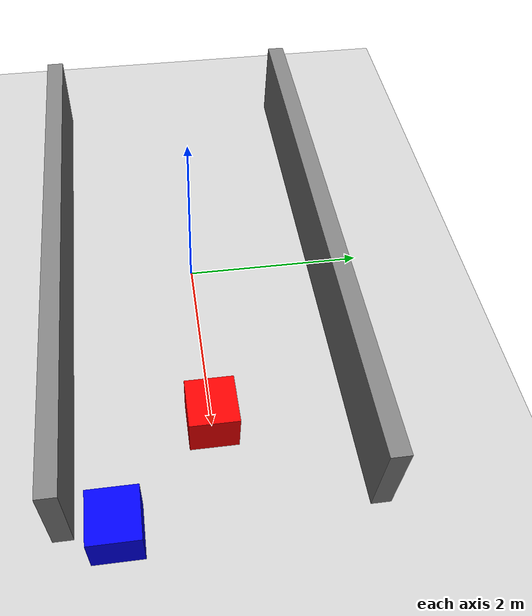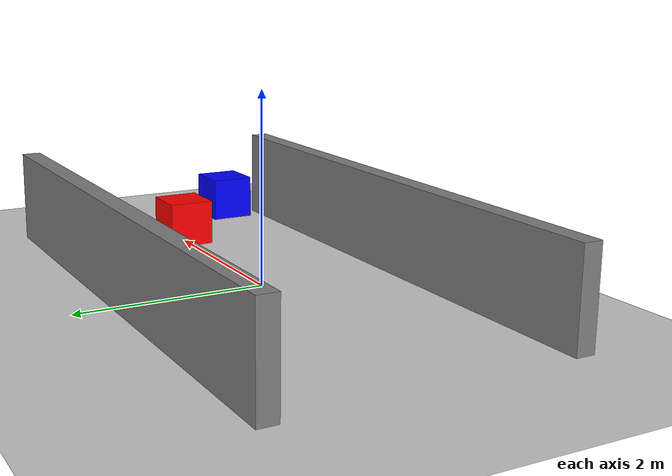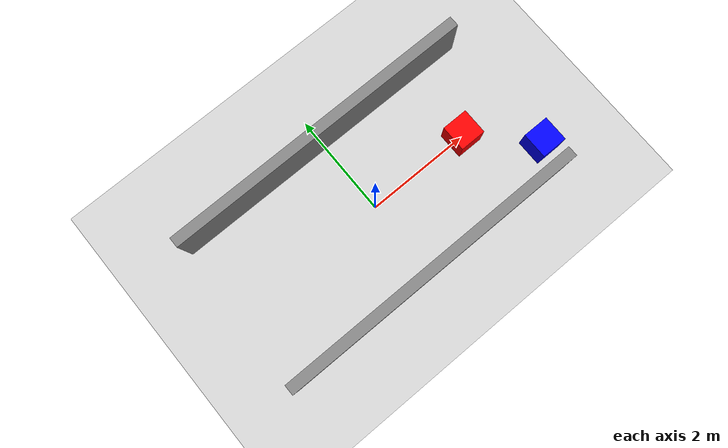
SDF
<sdf version="1.8">
 <world name="world1">
  <physics name="1ms" type="ignored">
   <max_step_size>0.001</max_step_size>
   <real_time_factor>1.0</real_time_factor>
  </physics>
  <plugin filename="libignition-gazebo-physics-system.so" name="ignition::gazebo::systems::Physics"/>
  <plugin filename="libignition-gazebo-user-commands-system.so" name="ignition::gazebo::systems::UserCommands"/>
  <plugin filename="libignition-gazebo-scene-broadcaster-system.so" name="ignition::gazebo::systems::SceneBroadcaster"/>
  <scene><ambient>1.0 1.0 1.0</ambient><background>0.8 0.8 0.8</background><grid>true</grid></scene>
  <light type="directional" name="sun">
   <pose>0 0 10 0 0 0</pose>
   <diffuse>0.8 0.8 0.8 1</diffuse>
   <specular>0.2 0.2 0.2 1</specular>
   <attenuation>
    <range>1000</range>
    <constant>0.9</constant>
    <linear>0.01</linear>
    <quadratic>0.001</quadratic>
   </attenuation>
   <direction>-0.5 0.1 -0.9</direction>
  </light>
  <model name="ground_plane">
   <static>true</static>
   <link name="link">
    <collision name="collision"><geometry><plane><normal>0 0 1</normal></plane></geometry></collision>
    <visual name="visual">
     <geometry><plane><normal>0 0 1</normal><size>100 100</size></plane></geometry>
     <material>
      <ambient>0.8 0.8 0.8 1</ambient>
      <diffuse>0.8 0.8 0.8 1</diffuse>
      <specular>0.8 0.8 0.8 1</specular>
     </material>
    </visual>
   </link>
  </model>
  <model name="wall_left">
   <static>true</static>
   <pose>0 1.5 0.5 0 0 0</pose>
   <link name="link">
    <collision name="collision"><geometry><box><size>6 0.2 1</size></box></geometry></collision>
    <visual name="visual">
     <geometry><box><size>6 0.2 1</size></box></geometry>
     <material><diffuse>0.5 0.5 0.5 1</diffuse></material>
    </visual>
   </link>
  </model>
  <model name="wall_right">
   <static>true</static>
   <pose>0 -1.5 0.5 0 0 0</pose>
   <link name="link">
    <collision name="collision"><geometry><box><size>6 0.2 1</size></box></geometry></collision>
    <visual name="visual">
     <geometry><box><size>6 0.2 1</size></box></geometry>
     <material><diffuse>0.5 0.5 0.5 1</diffuse></material>
    </visual>
   </link>
  </model>
  <model name="obstacle_middle">
   <static>true</static>
   <pose>2 0 0.25 0 0 0</pose>
   <link name="link">
    <collision name="collision"><geometry><box><size>0.5 0.5 0.5</size></box></geometry></collision>
    <visual name="visual">
     <geometry><box><size>0.5 0.5 0.5</size></box></geometry>
     <material><diffuse>1 0 0 1</diffuse></material>
    </visual>
   </link>
  </model>
  <model name="obstacle_side">
   <static>true</static>
   <pose>3 -1.0 0.25 0 0 0</pose>
   <link name="link">
    <collision name="collision"><geometry><box><size>0.5 0.5 0.5</size></box></geometry></collision>
    <visual name="visual">
     <geometry><box><size>0.5 0.5 0.5</size></box></geometry>
     <material><diffuse>0 0 1 1</diffuse></material>
    </visual>
   </link>
  </model>
 </world>
</sdf>
